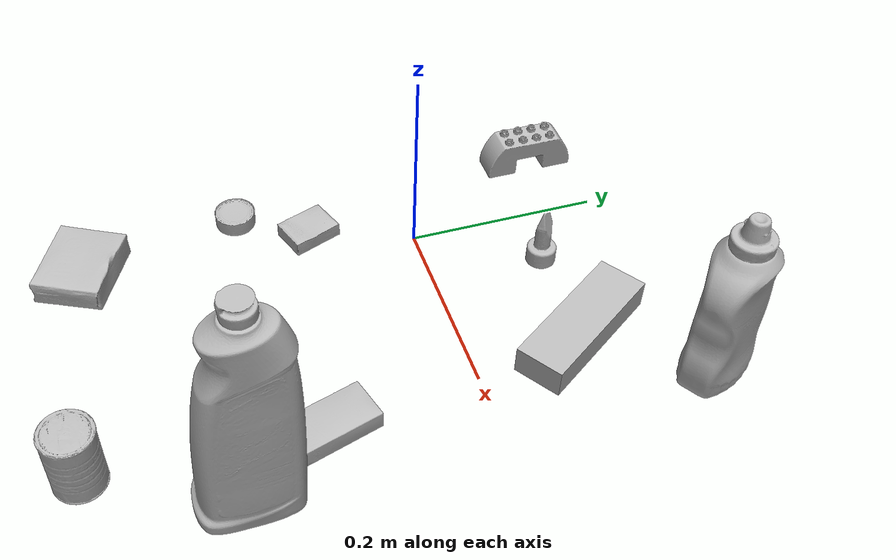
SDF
<sdf version="1.4">
  <world name="default">
    <light name="light1" type="point">
      <pose>0 0 1 0 0 0</pose>
      <diffuse>3 3 3 1</diffuse>
      <specular>3 3 3 1</specular>
    </light>
    <light name="light2" type="point">
      <pose>0 0.5 2 0 0 0</pose>
      <diffuse>1 1 1 1</diffuse>
      <specular>1 1 1 1</specular>
    </light>
    <light name="light3" type="point">
      <pose>0 0.5 2 0 0 0</pose>
      <diffuse>3 3 3 1</diffuse>
      <specular>3 3 3 1</specular>
    </light>
    <scene>
      <ambient>0.7 0.7 0.7</ambient>
    </scene>
    <model name="bottle1">
      <link name="link_bottle1">
        <collision name="default">
          <geometry>
            <mesh>
              <uri>model://mustard_bottle/collision_meshes/collision.obj</uri>
              <scale>1.0 1.0 1.0</scale>
            </mesh>
          </geometry>
          <surface>
            <friction>
              <ode>
                <mu>0.5</mu>
                <mu2>0.5</mu2>
              </ode>
            </friction>
          <contact>
        <ode>
            <max_vel>0</max_vel>
            <min_depth>0.0001</min_depth>
            <kp>1e8</kp>
        </ode>
    </contact></surface>
        </collision>
        <visual name="default">
          <geometry>
            <mesh>
              <uri>model://mustard_bottle/visual_meshes/visual.dae</uri>
              <scale>1.0 1.0 1.0</scale>
            </mesh>
          </geometry>
        </visual>
        <inertial>
          <mass>0.8303800225257874</mass>
          <pose>0.0005032453336752951 -0.00015647402324248105 -0.017475798726081848 0.0004182333015560062 0.0009465791044325989 0.02485372608929167</pose>
          <inertia>
            <ixx>0.0023058522</ixx>
            <iyy>0.0020231898</iyy>
            <izz>0.00060770847</izz>
            <ixy>0</ixy>
            <ixz>0</ixz>
            <iyz>0</iyz>
          </inertia>
        </inertial>
      </link>
      <pose>0.24979501962661743 0.2202303111553192 0.09615197777748108 1.5135041770828326e-05 1.6524826344421102e-05 -2.576712430326937</pose>
    </model>
    <model name="bottle2">
      <link name="link_bottle2">
        <collision name="default">
          <geometry>
            <mesh>
              <uri>model://bleach_cleanser/collision_meshes/collision.obj</uri>
              <scale>1.0 1.0 1.0</scale>
            </mesh>
          </geometry>
          <surface>
            <friction>
              <ode>
                <mu>0.5</mu>
                <mu2>0.5</mu2>
              </ode>
            </friction>
          <contact>
        <ode>
            <max_vel>0</max_vel>
            <min_depth>0.0001</min_depth>
            <kp>1e8</kp>
        </ode>
    </contact></surface>
        </collision>
        <visual name="default">
          <geometry>
            <mesh>
              <uri>model://bleach_cleanser/visual_meshes/visual.dae</uri>
              <scale>1.0 1.0 1.0</scale>
            </mesh>
          </geometry>
        </visual>
        <inertial>
          <mass>1.2443958520889282</mass>
          <pose>0.00012193184375064448 0.0037838828284293413 -0.02442161552608013 -0.07381670616387152 0.00042011519151103325 -0.006875073427896589</pose>
          <inertia>
            <ixx>0.006056655</ixx>
            <iyy>0.005643917</iyy>
            <izz>0.0010355307</izz>
            <ixy>0</ixy>
            <ixz>0</ixz>
            <iyz>0</iyz>
          </inertia>
        </inertial>
      </link>
      <pose>0.2661381959915161 -0.23322919011116028 0.12578411400318146 -0.00019614267856827964 1.8229137559282678e-05 -0.0009845737718349825</pose>
    </model>
    <model name="toy1">
      <link name="link_toy1">
        <collision name="default">
          <geometry>
            <mesh>
              <uri>model://e_lego_duplo/collision_meshes/collision.obj</uri>
              <scale>1.0 1.0 1.0</scale>
            </mesh>
          </geometry>
          <surface>
            <friction>
              <ode>
                <mu>0.5</mu>
                <mu2>0.5</mu2>
              </ode>
            </friction>
          <contact>
        <ode>
            <max_vel>0</max_vel>
            <min_depth>0.0001</min_depth>
            <kp>1e8</kp>
        </ode>
    </contact></surface>
        </collision>
        <visual name="default">
          <geometry>
            <mesh>
              <uri>model://e_lego_duplo/visual_meshes/visual.dae</uri>
              <scale>1.0 1.0 1.0</scale>
            </mesh>
          </geometry>
        </visual>
        <inertial>
          <mass>0.09737597405910492</mass>
          <pose>0.00032560466206632555 0.00023485408746637404 0.00195214559789747 -0.022567666099209266 -6.826041083389806e-05 -0.0076251575404409295</pose>
          <inertia>
            <ixx>2.0306108e-05</ixx>
            <iyy>8.3341496e-05</iyy>
            <izz>8.115786e-05</izz>
            <ixy>0</ixy>
            <ixz>0</ixz>
            <iyz>0</iyz>
          </inertia>
        </inertial>
      </link>
      <pose>-0.0832451581954956 0.15837213397026062 0.02180899865925312 -4.4019201632656183e-07 6.789441775706951e-09 -1.5658664616054991</pose>
    </model>
    <model name="toy2">
      <link name="link_toy2">
        <collision name="default">
          <geometry>
            <mesh>
              <uri>model://e_toy_airplane/collision_meshes/collision.obj</uri>
              <scale>1.0 1.0 1.0</scale>
            </mesh>
          </geometry>
          <surface>
            <friction>
              <ode>
                <mu>0.5</mu>
                <mu2>0.5</mu2>
              </ode>
            </friction>
          <contact>
        <ode>
            <max_vel>0</max_vel>
            <min_depth>0.0001</min_depth>
            <kp>1e8</kp>
        </ode>
    </contact></surface>
        </collision>
        <visual name="default">
          <geometry>
            <mesh>
              <uri>model://e_toy_airplane/visual_meshes/visual.dae</uri>
              <scale>1.0 1.0 1.0</scale>
            </mesh>
          </geometry>
        </visual>
        <inertial>
          <mass>0.02463557943701744</mass>
          <pose>0.0001174048229586333 -2.2482929125544615e-05 -0.011187203228473663 0.005518471763615081 0.009228316378097946 0.15041226495803456</pose>
          <inertia>
            <ixx>7.519061e-06</ixx>
            <iyy>7.442144e-06</iyy>
            <izz>2.2597733e-06</izz>
            <ixy>0</ixy>
            <ixz>0</ixz>
            <iyz>0</iyz>
          </inertia>
        </inertial>
      </link>
      <pose>0.067229725420475 0.11690141260623932 0.033211808651685715 6.849528191564922e-05 -9.166901723619924e-05 -2.5507619980230354</pose>
    </model>
    <model name="can1">
      <link name="link_can1">
        <collision name="default">
          <geometry>
            <mesh>
              <uri>model://master_chef_can/collision_meshes/collision.obj</uri>
              <scale>0.5 0.5 0.5</scale>
            </mesh>
          </geometry>
          <surface>
            <friction>
              <ode>
                <mu>0.5</mu>
                <mu2>0.5</mu2>
              </ode>
            </friction>
          <contact>
        <ode>
            <max_vel>0</max_vel>
            <min_depth>0.0001</min_depth>
            <kp>1e8</kp>
        </ode>
    </contact></surface>
        </collision>
        <visual name="default">
          <geometry>
            <mesh>
              <uri>model://master_chef_can/visual_meshes/visual.dae</uri>
              <scale>0.5 0.5 0.5</scale>
            </mesh>
          </geometry>
        </visual>
        <inertial>
          <mass>0.10604178160429001</mass>
          <pose>-4.6619643399026245e-05 1.3926852204804163e-07 -5.079910988570191e-05 -0.0017995162277820833 0.0006479167566960504 -0.6102671332965355</pose>
          <inertia>
            <ixx>6.2239335e-05</ixx>
            <iyy>6.178125e-05</iyy>
            <izz>3.439199e-05</izz>
            <ixy>0</ixy>
            <ixz>0</ixz>
            <iyz>0</iyz>
          </inertia>
        </inertial>
      </link>
      <pose>0.20574474334716797 -0.3738183081150055 0.03530197590589523 -1.5207656939202827e-06 -6.516415092970365e-07 -2.7075613059271175</pose>
    </model>
    <model name="can2">
      <link name="link_can2">
        <collision name="default">
          <geometry>
            <mesh>
              <uri>model://tuna_fish_can/collision_meshes/collision.obj</uri>
              <scale>0.5 0.5 0.5</scale>
            </mesh>
          </geometry>
          <surface>
            <friction>
              <ode>
                <mu>0.5</mu>
                <mu2>0.5</mu2>
              </ode>
            </friction>
          <contact>
        <ode>
            <max_vel>0</max_vel>
            <min_depth>0.0001</min_depth>
            <kp>1e8</kp>
        </ode>
    </contact></surface>
        </collision>
        <visual name="default">
          <geometry>
            <mesh>
              <uri>model://tuna_fish_can/visual_meshes/visual.dae</uri>
              <scale>0.5 0.5 0.5</scale>
            </mesh>
          </geometry>
        </visual>
        <inertial>
          <mass>0.028372401371598244</mass>
          <pose>-2.0361669157864526e-05 -7.256527169374749e-06 -0.0005269024986773729 -0.0017944775646394609 0.00017161727950706725 0.2405381123423382</pose>
          <inertia>
            <ixx>3.8359926e-06</ixx>
            <iyy>3.8200033e-06</iyy>
            <izz>6.5639315e-06</izz>
            <ixy>0</ixy>
            <ixz>0</ixz>
            <iyz>0</iyz>
          </inertia>
        </inertial>
      </link>
      <pose>-0.07842258363962173 -0.17591223120689392 0.00851999968290329 4.542104717754837e-08 -1.5647895771997917e-08 -0.9414675112308244</pose>
    </model>
    <model name="box1">
      <link name="link_box1">
        <collision name="default">
          <geometry>
            <mesh>
              <uri>model://jenga/collision_meshes/collision.obj</uri>
              <scale>1.0 1.0 1.0</scale>
            </mesh>
          </geometry>
          <surface>
            <friction>
              <ode>
                <mu>0.5</mu>
                <mu2>0.5</mu2>
              </ode>
            </friction>
          <contact>
        <ode>
            <max_vel>0</max_vel>
            <min_depth>0.0001</min_depth>
            <kp>1e8</kp>
        </ode>
    </contact></surface>
        </collision>
        <visual name="default">
          <geometry>
            <mesh>
              <uri>model://jenga/visual_meshes/visual.dae</uri>
              <scale>1.0 1.0 1.0</scale>
            </mesh>
          </geometry>
        </visual>
        <inertial>
          <mass>0.19909408688545227</mass>
          <pose>-2.502855807051674e-07 -0.0001025000965455547 -4.0923401684267446e-05 0.0 -7.34215461761844e-07 0.0</pose>
          <inertia>
            <ixx>5.509416e-05</ixx>
            <iyy>0.00037331658</iyy>
            <izz>0.00039854718</izz>
            <ixy>0</ixy>
            <ixz>0</ixz>
            <iyz>0</iyz>
          </inertia>
        </inertial>
      </link>
      <pose>0.17728635668754578 0.11263605207204819 0.014999995008111 8.962303702101784e-09 -2.879922341821264e-09 2.1632500758074107</pose>
    </model>
    <model name="box2">
      <link name="link_box2">
        <collision name="default">
          <geometry>
            <mesh>
              <uri>model://cracker_box/collision_meshes/collision.obj</uri>
              <scale>0.25 0.25 0.25</scale>
            </mesh>
          </geometry>
          <surface>
            <friction>
              <ode>
                <mu>0.5</mu>
                <mu2>0.5</mu2>
              </ode>
            </friction>
          <contact>
        <ode>
            <max_vel>0</max_vel>
            <min_depth>0.0001</min_depth>
            <kp>1e8</kp>
        </ode>
    </contact></surface>
        </collision>
        <visual name="default">
          <geometry>
            <mesh>
              <uri>model://cracker_box/visual_meshes/visual.dae</uri>
              <scale>0.25 0.25 0.25</scale>
            </mesh>
          </geometry>
        </visual>
        <inertial>
          <mass>0.04114612191915512</mass>
          <pose>0.00023660354781895876 6.358561950037256e-05 -0.0004257383698131889 -0.00031620780631524763 -0.011106488668660274 0.002546795934166242</pose>
          <inertia>
            <ixx>6.5410845e-06</ixx>
            <iyy>1.0800616e-05</iyy>
            <izz>1.5413472e-05</izz>
            <ixy>0</ixy>
            <ixz>0</ixz>
            <iyz>0</iyz>
          </inertia>
        </inertial>
      </link>
      <pose>-0.037398405373096466 -0.10540362447500229 0.009120447561144829 -0.011787956811730657 -0.00736715831197101 1.9075450650698702</pose>
    </model>
    <model name="box3">
      <link name="link_box3">
        <collision name="default">
          <geometry>
            <mesh>
              <uri>model://gelatin_box/collision_meshes/collision.obj</uri>
              <scale>1.0 1.0 1.0</scale>
            </mesh>
          </geometry>
          <surface>
            <friction>
              <ode>
                <mu>0.5</mu>
                <mu2>0.5</mu2>
              </ode>
            </friction>
          <contact>
        <ode>
            <max_vel>0</max_vel>
            <min_depth>0.0001</min_depth>
            <kp>1e8</kp>
        </ode>
    </contact></surface>
        </collision>
        <visual name="default">
          <geometry>
            <mesh>
              <uri>model://gelatin_box/visual_meshes/visual.dae</uri>
              <scale>1.0 1.0 1.0</scale>
            </mesh>
          </geometry>
        </visual>
        <inertial>
          <mass>0.2244011014699936</mass>
          <pose>0.00043196187471039593 0.00011156871914863586 -0.00036403213744051754 -0.001050372105108351 -0.004755819619724262 0.01644056133527167</pose>
          <inertia>
            <ixx>0.00015840889</ixx>
            <iyy>0.000113150636</iyy>
            <izz>0.0002411336</izz>
            <ixy>0</ixy>
            <ixz>0</ixz>
            <iyz>0</iyz>
          </inertia>
        </inertial>
      </link>
      <pose>-0.04389605298638344 -0.3426549434661865 0.015168311074376106 0.005597377998062781 -0.007304425731384989 1.0829173442914715</pose>
    </model>
    <model name="box4">
      <link name="link_box4">
        <collision name="default">
          <geometry>
            <mesh>
              <uri>model://sugar_box/collision_meshes/collision.obj</uri>
              <scale>0.5 0.5 0.5</scale>
            </mesh>
          </geometry>
          <surface>
            <friction>
              <ode>
                <mu>0.5</mu>
                <mu2>0.5</mu2>
              </ode>
            </friction>
          <contact>
        <ode>
            <max_vel>0</max_vel>
            <min_depth>0.0001</min_depth>
            <kp>1e8</kp>
        </ode>
    </contact></surface>
        </collision>
        <visual name="default">
          <geometry>
            <mesh>
              <uri>model://sugar_box/visual_meshes/visual.dae</uri>
              <scale>0.5 0.5 0.5</scale>
            </mesh>
          </geometry>
        </visual>
        <inertial>
          <mass>0.11117161065340042</mass>
          <pose>0.0005171863595023751 1.9245546354795806e-05 -0.00018182402709499002 -0.0004046265622990317 0.001050663638873437 0.002615378555930204</pose>
          <inertia>
            <ixx>2.3156968e-05</ixx>
            <iyy>7.4848074e-05</iyy>
            <izz>8.960209e-05</izz>
            <ixy>0</ixy>
            <ixz>0</ixz>
            <iyz>0</iyz>
          </inertia>
        </inertial>
      </link>
      <pose>0.21836437284946442 -0.15086452662944794 0.01142042689025402 -0.009804837572969875 -0.018944219765624267 1.8451271210928735</pose>
    </model>
  <physics type="ode">
      <max_contacts>50</max_contacts>
      <ode>
        <solver>
          <type>quick</type>
          <iters>75</iters>
        </solver>
        <constraints>
          <contact_max_correcting_vel>0</contact_max_correcting_vel>
          <contact_surface_layer>0</contact_surface_layer>
        </constraints>
      </ode>
    </physics></world>
</sdf>
